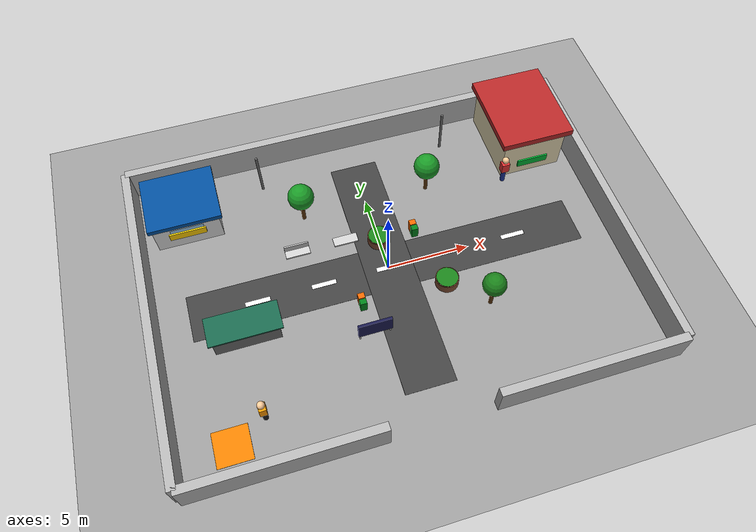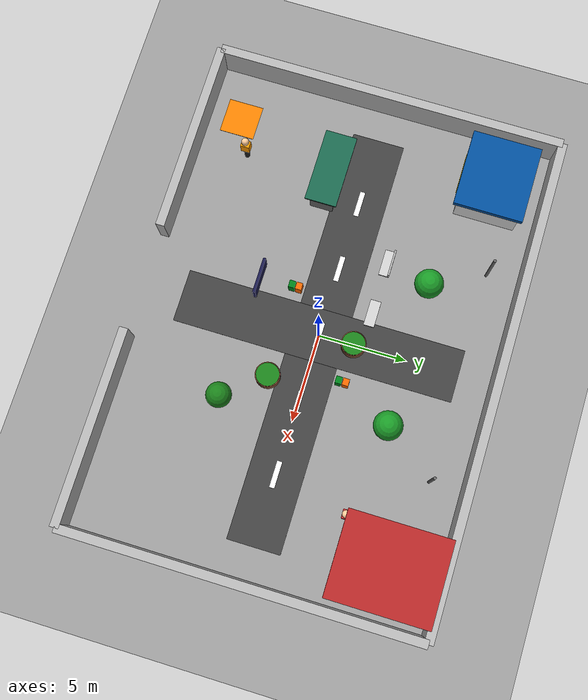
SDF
<?xml version="1.0" ?>
<sdf version="1.7">

<world name="delivery_world">

  <scene>
    <ambient>0.8 0.8 0.8 1</ambient>
    <background>0.92 0.92 0.92 1</background>
    <shadows>true</shadows>
  </scene>

  <light name="sun" type="directional">
    <cast_shadows>true</cast_shadows>
    <pose>0 0 20 0 0 0</pose>
    <diffuse>1 1 1 1</diffuse>
    <specular>0.5 0.5 0.5 1</specular>
    <direction>-0.5 0.2 -1</direction>
  </light>

  <model name="ground_plane">
    <static>true</static>
    <link name="link">
      <collision name="collision">
        <geometry>
          <plane>
            <normal>0 0 1</normal>
            <size>28 20</size>
          </plane>
        </geometry>
      </collision>
      <visual name="visual">
        <geometry>
          <plane>
            <normal>0 0 1</normal>
            <size>28 20</size>
          </plane>
        </geometry>
        <material>
          <ambient>0.6 0.6 0.6 1</ambient>
          <diffuse>0.6 0.6 0.6 1</diffuse>
        </material>
      </visual>
    </link>
  </model>

  <model name="road_horizontal">
    <static>true</static>
    <pose>0 0 0.005 0 0 0</pose>
    <link name="link">
      <visual name="visual">
        <geometry>
          <box><size>24 3 0.01</size></box>
        </geometry>
        <material>
          <ambient>0.25 0.25 0.25 1</ambient>
          <diffuse>0.25 0.25 0.25 1</diffuse>
        </material>
      </visual>
    </link>
  </model>

  <model name="road_vertical">
    <static>true</static>
    <pose>0 0 0.006 0 0 0</pose>
    <link name="link">
      <visual name="visual">
        <geometry>
          <box><size>3 16 0.01</size></box>
        </geometry>
        <material>
          <ambient>0.25 0.25 0.25 1</ambient>
          <diffuse>0.25 0.25 0.25 1</diffuse>
        </material>
      </visual>
    </link>
  </model>

  <model name="road_line_1">
    <static>true</static>
    <pose>-8 0 0.01 0 0 0</pose>
    <link name="link"><visual name="v"><geometry><box><size>1.5 0.3 0.005</size></box></geometry><material><ambient>1 1 1 1</ambient><diffuse>1 1 1 1</diffuse></material></visual></link>
  </model>
  <model name="road_line_2">
    <static>true</static>
    <pose>-4 0 0.01 0 0 0</pose>
    <link name="link"><visual name="v"><geometry><box><size>1.5 0.3 0.005</size></box></geometry><material><ambient>1 1 1 1</ambient><diffuse>1 1 1 1</diffuse></material></visual></link>
  </model>
  <model name="road_line_3">
    <static>true</static>
    <pose>0 0 0.01 0 0 0</pose>
    <link name="link"><visual name="v"><geometry><box><size>1.5 0.3 0.005</size></box></geometry><material><ambient>1 1 1 1</ambient><diffuse>1 1 1 1</diffuse></material></visual></link>
  </model>
  <model name="road_line_4">
    <static>true</static>
    <pose>4 0 0.01 0 0 0</pose>
    <link name="link"><visual name="v"><geometry><box><size>1.5 0.3 0.005</size></box></geometry><material><ambient>1 1 1 1</ambient><diffuse>1 1 1 1</diffuse></material></visual></link>
  </model>
  <model name="road_line_5">
    <static>true</static>
    <pose>8 0 0.01 0 0 0</pose>
    <link name="link"><visual name="v"><geometry><box><size>1.5 0.3 0.005</size></box></geometry><material><ambient>1 1 1 1</ambient><diffuse>1 1 1 1</diffuse></material></visual></link>
  </model>

  <model name="wall_left">
    <static>true</static>
    <pose>-14 0 1 0 0 0</pose>
    <link name="link">
      <collision name="c"><geometry><box><size>0.5 20 2</size></box></geometry></collision>
      <visual name="v"><geometry><box><size>0.5 20 2</size></box></geometry><material><ambient>0.7 0.7 0.7 1</ambient><diffuse>0.7 0.7 0.7 1</diffuse></material></visual>
    </link>
  </model>

  <model name="wall_right">
    <static>true</static>
    <pose>14 0 1 0 0 0</pose>
    <link name="link">
      <collision name="c"><geometry><box><size>0.5 20 2</size></box></geometry></collision>
      <visual name="v"><geometry><box><size>0.5 20 2</size></box></geometry><material><ambient>0.7 0.7 0.7 1</ambient><diffuse>0.7 0.7 0.7 1</diffuse></material></visual>
    </link>
  </model>

  <model name="wall_top">
    <static>true</static>
    <pose>0 10 1 0 0 0</pose>
    <link name="link">
      <collision name="c"><geometry><box><size>28 0.5 2</size></box></geometry></collision>
      <visual name="v"><geometry><box><size>28 0.5 2</size></box></geometry><material><ambient>0.7 0.7 0.7 1</ambient><diffuse>0.7 0.7 0.7 1</diffuse></material></visual>
    </link>
  </model>

  <model name="wall_bottom_left">
    <static>true</static>
    <pose>-8.5 -10 1 0 0 0</pose>
    <link name="link">
      <collision name="c"><geometry><box><size>11 0.5 2</size></box></geometry></collision>
      <visual name="v"><geometry><box><size>11 0.5 2</size></box></geometry><material><ambient>0.7 0.7 0.7 1</ambient><diffuse>0.7 0.7 0.7 1</diffuse></material></visual>
    </link>
  </model>

  <model name="wall_bottom_right">
    <static>true</static>
    <pose>8.5 -10 1 0 0 0</pose>
    <link name="link">
      <collision name="c"><geometry><box><size>11 0.5 2</size></box></geometry></collision>
      <visual name="v"><geometry><box><size>11 0.5 2</size></box></geometry><material><ambient>0.7 0.7 0.7 1</ambient><diffuse>0.7 0.7 0.7 1</diffuse></material></visual>
    </link>
  </model>

  <model name="warehouse">
    <static>true</static>
    <pose>-11 7 1 0 0 0</pose>
    <link name="link">
      <collision name="collision"><geometry><box><size>4 3.5 2</size></box></geometry></collision>
      <visual name="house_body">
        <geometry><box><size>4 3.5 2</size></box></geometry>
        <material><ambient>0.85 0.85 0.85 1</ambient><diffuse>0.85 0.85 0.85 1</diffuse></material>
      </visual>
      <visual name="roof">
        <pose>0 0 1.1 0 0 0</pose>
        <geometry><box><size>4.4 3.9 0.3</size></box></geometry>
        <material><ambient>0.0 0.3 0.6 1</ambient><diffuse>0.0 0.3 0.6 1</diffuse></material>
      </visual>
      <visual name="window">
        <pose>0 -1.76 0.2 0 0 0</pose>
        <geometry><box><size>2 0.02 0.8</size></box></geometry>
        <material><ambient>0.5 0.8 1 0.6</ambient><diffuse>0.5 0.8 1 0.6</diffuse></material>
      </visual>
    </link>
  </model>

  <model name="warehouse_sign">
    <static>true</static>
    <pose>-11 5.1 1.2 0 0 0</pose>
    <link name="link">
      <visual name="visual">
        <geometry><box><size>2.2 0.1 0.5</size></box></geometry>
        <material><ambient>1 0.8 0 1</ambient><diffuse>1 0.8 0 1</diffuse></material>
      </visual>
    </link>
  </model>

  <model name="delivery_house">
    <static>true</static>
    <pose>11 7 1.5 0 0 0</pose>
    <link name="link">
      <collision name="collision"><geometry><box><size>4 5 3</size></box></geometry></collision>
      <visual name="house_body">
        <geometry><box><size>4 5 3</size></box></geometry>
        <material><ambient>0.9 0.85 0.7 1</ambient><diffuse>0.9 0.85 0.7 1</diffuse></material>
      </visual>
      <visual name="roof">
        <pose>0 0 1.6 0 0 0</pose>
        <geometry><box><size>4.6 5.6 0.4</size></box></geometry>
        <material><ambient>0.7 0.15 0.15 1</ambient><diffuse>0.7 0.15 0.15 1</diffuse></material>
      </visual>
    </link>
  </model>

  <model name="delivery_sign">
    <static>true</static>
    <pose>11 4.4 1 0 0 0</pose>
    <link name="link">
      <visual name="visual">
        <geometry><box><size>2 0.1 0.5</size></box></geometry>
        <material><ambient>0 0.7 0.2 1</ambient><diffuse>0 0.7 0.2 1</diffuse></material>
      </visual>
    </link>
  </model>

  <model name="customer_person">
    <static>true</static>
    <pose>9 4.2 0 0 0 3.14</pose>
    <link name="body_link">
      <visual name="legs"><pose>0 0 0.5 0 0 0</pose><geometry><cylinder><radius>0.15</radius><length>1</length></cylinder></geometry><material><ambient>0.1 0.2 0.6 1</ambient><diffuse>0.1 0.2 0.6 1</diffuse></material></visual>
      <visual name="body"><pose>0 0 1.3 0 0 0</pose><geometry><box><size>0.5 0.4 0.7</size></box></geometry><material><ambient>0.9 0.2 0.2 1</ambient><diffuse>0.9 0.2 0.2 1</diffuse></material></visual>
      <visual name="head"><pose>0 0 1.9 0 0 0</pose><geometry><sphere><radius>0.22</radius></sphere></geometry><material><ambient>1 0.8 0.6 1</ambient><diffuse>1 0.8 0.6 1</diffuse></material></visual>
      <collision name="collision"><pose>0 0 1.1 0 0 0</pose><geometry><cylinder><radius>0.3</radius><length>2.0</length></cylinder></geometry></collision>
    </link>
  </model>

  <model name="shipper_person">
    <static>true</static>
    <pose>-9 -7 0 0 0 1.57</pose>
    <link name="body_link">
      <visual name="legs"><pose>0 0 0.5 0 0 0</pose><geometry><cylinder><radius>0.15</radius><length>1</length></cylinder></geometry><material><ambient>0.1 0.1 0.1 1</ambient><diffuse>0.1 0.1 0.1 1</diffuse></material></visual>
      <visual name="body">
        <pose>0 0 1.3 0 0 0</pose>
        <geometry><box><size>0.5 0.4 0.7</size></box></geometry>
        <material>
          <ambient>1 0.6 0.0 1</ambient>
          <diffuse>1 0.6 0.0 1</diffuse>
        </material>
      </visual>
      <visual name="head"><pose>0 0 1.9 0 0 0</pose><geometry><sphere><radius>0.22</radius></sphere></geometry><material><ambient>1 0.8 0.6 1</ambient><diffuse>1 0.8 0.6 1</diffuse></material></visual>
    </link>
  </model>

  <model name="tree_1">
    <static>true</static>
    <pose>-4 5 0 0 0 0</pose>
    <link name="link">
      <visual name="trunk"><pose>0 0 0.8 0 0 0</pose><geometry><cylinder><radius>0.12</radius><length>1.6</length></cylinder></geometry><material><ambient>0.35 0.2 0.05 1</ambient><diffuse>0.35 0.2 0.05 1</diffuse></material></visual>
      <visual name="leaf"><pose>0 0 2.2 0 0 0</pose><geometry><sphere><radius>0.8</radius></sphere></geometry><material><ambient>0.1 0.6 0.15 1</ambient><diffuse>0.1 0.6 0.15 1</diffuse></material></visual>
      <collision name="co"><pose>0 0 1.5 0 0 0</pose><geometry><cylinder><radius>0.6</radius><length>3</length></cylinder></geometry></collision>
    </link>
  </model>

  <model name="tree_2">
    <static>true</static>
    <pose>4 5 0 0 0 0</pose>
    <link name="link">
      <visual name="trunk"><pose>0 0 0.8 0 0 0</pose><geometry><cylinder><radius>0.12</radius><length>1.6</length></cylinder></geometry><material><ambient>0.35 0.2 0.05 1</ambient><diffuse>0.35 0.2 0.05 1</diffuse></material></visual>
      <visual name="leaf"><pose>0 0 2.2 0 0 0</pose><geometry><sphere><radius>0.8</radius></sphere></geometry><material><ambient>0.1 0.6 0.15 1</ambient><diffuse>0.1 0.6 0.15 1</diffuse></material></visual>
      <collision name="co"><pose>0 0 1.5 0 0 0</pose><geometry><cylinder><radius>0.6</radius><length>3</length></cylinder></geometry></collision>
    </link>
  </model>

  <model name="tree_3">
    <static>true</static>
    <pose>5 -4 0 0 0 0</pose>
    <link name="link">
      <visual name="trunk"><pose>0 0 0.8 0 0 0</pose><geometry><cylinder><radius>0.12</radius><length>1.6</length></cylinder></geometry><material><ambient>0.35 0.2 0.05 1</ambient><diffuse>0.35 0.2 0.05 1</diffuse></material></visual>
      <visual name="leaf"><pose>0 0 2.1 0 0 0</pose><geometry><sphere><radius>0.7</radius></sphere></geometry><material><ambient>0.1 0.5 0.1 1</ambient><diffuse>0.1 0.5 0.1 1</diffuse></material></visual>
    </link>
  </model>

  <model name="campus_bench_1">
    <static>true</static>
    <pose>-5 2.5 0.25 0 0 0</pose>
    <link name="link">
      <collision name="c"><geometry><box><size>1.5 0.6 0.5</size></box></geometry></collision>
      <visual name="seat"><geometry><box><size>1.5 0.6 0.1</size></box></geometry><material><ambient>0.8 0.8 0.8 1</ambient><diffuse>0.8 0.8 0.8 1</diffuse></material></visual>
      <visual name="back"><pose>0 0.25 0.25 0 0 0</pose><geometry><box><size>1.5 0.1 0.4</size></box></geometry><material><ambient>0.7 0.7 0.7 1</ambient><diffuse>0.7 0.7 0.7 1</diffuse></material></visual>
    </link>
  </model>

  <model name="campus_bench_2">
    <static>true</static>
    <pose>-2 2.5 0.25 0 0 0</pose>
    <link name="link">
      <collision name="c"><geometry><box><size>1.5 0.6 0.5</size></box></geometry></collision>
      <visual name="seat"><geometry><box><size>1.5 0.6 0.1</size></box></geometry><material><ambient>0.8 0.8 0.8 1</ambient><diffuse>0.8 0.8 0.8 1</diffuse></material></visual>
    </link>
  </model>

  <model name="flower_bed_1">
    <static>true</static>
    <pose>0 2 0.3 0 0 0</pose>
    <link name="link">
      <collision name="c"><geometry><cylinder><radius>0.7</radius><length>0.6</length></cylinder></geometry></collision>
      <visual name="brick"><geometry><cylinder><radius>0.7</radius><length>0.6</length></cylinder></geometry><material><ambient>0.5 0.3 0.2 1</ambient><diffuse>0.5 0.3 0.2 1</diffuse></material></visual>
      <visual name="plant"><pose>0 0 0.31 0 0 0</pose><geometry><cylinder><radius>0.65</radius><length>0.05</length></cylinder></geometry><material><ambient>0.1 0.5 0.1 1</ambient><diffuse>0.1 0.5 0.1 1</diffuse></material></visual>
    </link>
  </model>

  <model name="flower_bed_2">
    <static>true</static>
    <pose>3 -2 0.3 0 0 0</pose>
    <link name="link">
      <collision name="c"><geometry><cylinder><radius>0.7</radius><length>0.6</length></cylinder></geometry></collision>
      <visual name="brick"><geometry><cylinder><radius>0.7</radius><length>0.6</length></cylinder></geometry><material><ambient>0.5 0.3 0.2 1</ambient><diffuse>0.5 0.3 0.2 1</diffuse></material></visual>
      <visual name="plant"><pose>0 0 0.31 0 0 0</pose><geometry><cylinder><radius>0.65</radius><length>0.05</length></cylinder></geometry><material><ambient>0.1 0.5 0.1 1</ambient><diffuse>0.1 0.5 0.1 1</diffuse></material></visual>
    </link>
  </model>

  <model name="parking_shed">
    <static>true</static>
    <pose>-9 -2 0.8 0 0 0</pose>
    <link name="link">
      <collision name="c"><geometry><box><size>4 1.5 1.6</size></box></geometry></collision>
      <visual name="base"><geometry><box><size>3.8 1.3 1.5</size></box></geometry><material><ambient>0.4 0.4 0.4 1</ambient><diffuse>0.4 0.4 0.4 1</diffuse></material></visual>
      <visual name="roof"><pose>0 0 0.8 0 0 0</pose><geometry><box><size>4.2 1.8 0.1</size></box></geometry><material><ambient>0.1 0.4 0.3 1</ambient><diffuse>0.1 0.4 0.3 1</diffuse></material></visual>
    </link>
  </model>

  <model name="notice_board">
    <static>true</static>
    <pose>-2 -4 0.9 0 0 0</pose>
    <link name="link">
      <collision name="c"><geometry><box><size>2 0.3 1.8</size></box></geometry></collision>
      <visual name="board"><geometry><box><size>2 0.15 1.2</size></box></geometry><material><ambient>0.1 0.1 0.3 1</ambient><diffuse>0.1 0.1 0.3 1</diffuse></material></visual>
      <visual name="stand_L"><pose>-0.9 0 -0.6 0 0 0</pose><geometry><cylinder><radius>0.05</radius><length>1.2</length></cylinder></geometry></visual>
      <visual name="stand_R"><pose>0.9 0 -0.6 0 0 0</pose><geometry><cylinder><radius>0.05</radius><length>1.2</length></cylinder></geometry></visual>
    </link>
  </model>

  <model name="trash_can_1">
    <static>true</static>
    <pose>2.2 2 0.4 0 0 0</pose>
    <link name="link">
      <collision name="c"><geometry><box><size>0.5 0.8 0.8</size></box></geometry></collision>
      <visual name="green_bin"><pose>0 -0.2 0 0 0 0</pose><geometry><box><size>0.4 0.35 0.8</size></box></geometry><material><ambient>0 0.5 0.1 1</ambient><diffuse>0 0.5 0.1 1</diffuse></material></visual>
      <visual name="orange_bin"><pose>0 0.2 0 0 0 0</pose><geometry><box><size>0.4 0.35 0.8</size></box></geometry><material><ambient>1 0.4 0 1</ambient><diffuse>1 0.4 0 1</diffuse></material></visual>
    </link>
  </model>

  <model name="trash_can_2">
    <static>true</static>
    <pose>-2.2 -2 0.4 0 0 0</pose>
    <link name="link">
      <collision name="c"><geometry><box><size>0.5 0.8 0.8</size></box></geometry></collision>
      <visual name="green_bin"><pose>0 -0.2 0 0 0 0</pose><geometry><box><size>0.4 0.35 0.8</size></box></geometry><material><ambient>0 0.5 0.1 1</ambient><diffuse>0 0.5 0.1 1</diffuse></material></visual>
      <visual name="orange_bin"><pose>0 0.2 0 0 0 0</pose><geometry><box><size>0.4 0.35 0.8</size></box></geometry><material><ambient>1 0.4 0 1</ambient><diffuse>1 0.4 0 1</diffuse></material></visual>
    </link>
  </model>

  <model name="lamp_1">
    <static>true</static>
    <pose>-6 8 1.5 0 0 0</pose>
    <link name="link">
      <visual name="visual">
        <geometry><cylinder><radius>0.08</radius><length>3</length></cylinder></geometry>
        <material><ambient>0.4 0.4 0.4 1</ambient><diffuse>0.4 0.4 0.4 1</diffuse></material>
      </visual>
    </link>
  </model>

  <model name="lamp_2">
    <static>true</static>
    <pose>6 8 1.5 0 0 0</pose>
    <link name="link">
      <visual name="visual">
        <geometry><cylinder><radius>0.08</radius><length>3</length></cylinder></geometry>
        <material><ambient>0.4 0.4 0.4 1</ambient><diffuse>0.4 0.4 0.4 1</diffuse></material>
      </visual>
    </link>
  </model>

  <model name="spawn_zone">
    <static>true</static>
    <pose>-11 -8 0.01 0 0 0</pose>
    <link name="link">
      <collision name="collision"><geometry><box><size>2 2 0.02</size></box></geometry></collision>
      <visual name="visual">
        <geometry><box><size>2 2 0.02</size></box></geometry>
        <material>
          <ambient>1 0.5 0 1</ambient>
          <diffuse>1 0.5 0 1</diffuse>
        </material>
      </visual>
    </link>
  </model>

</world>
</sdf>
